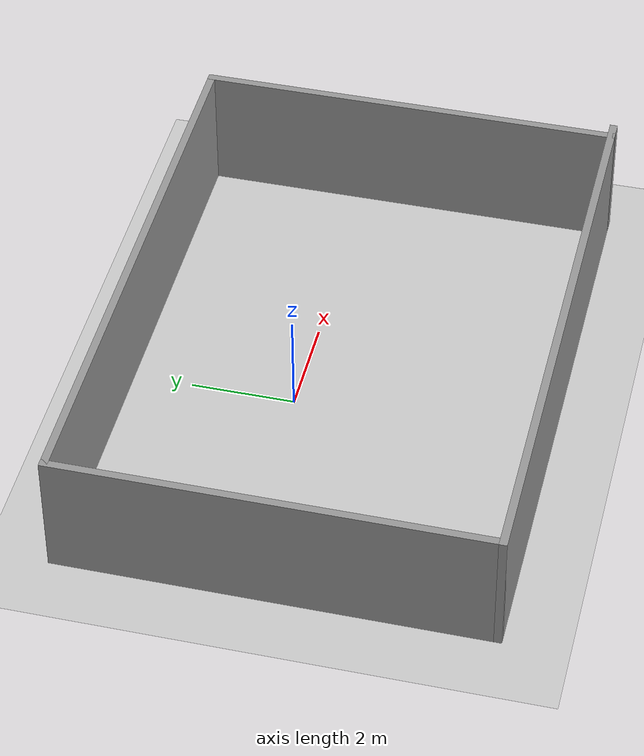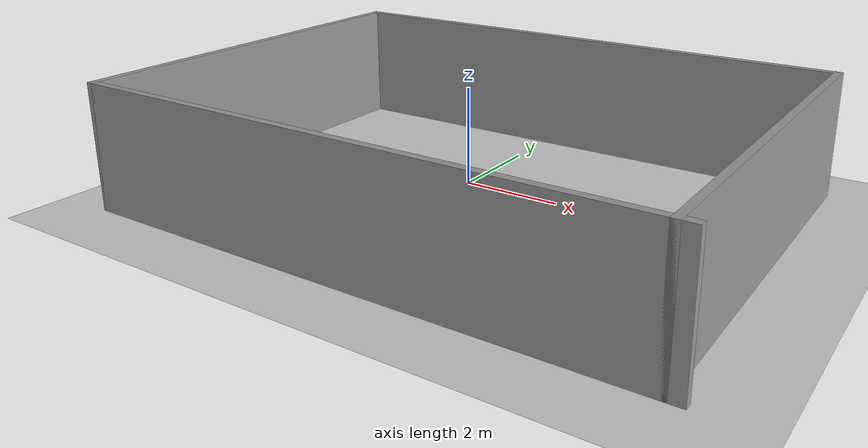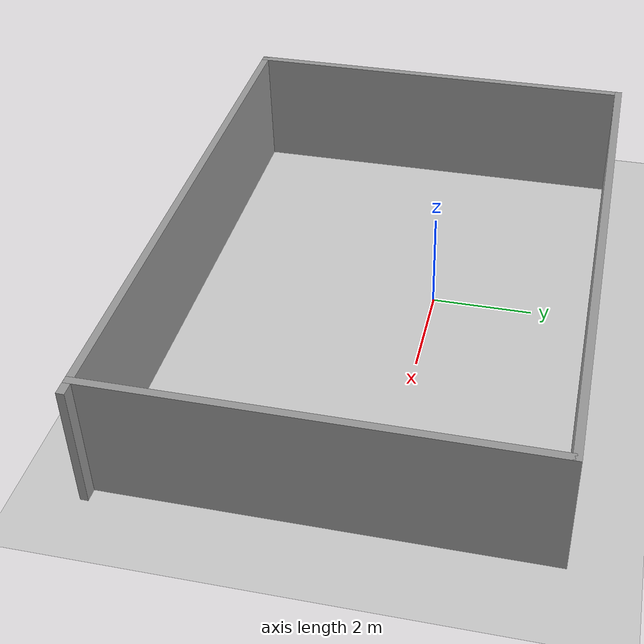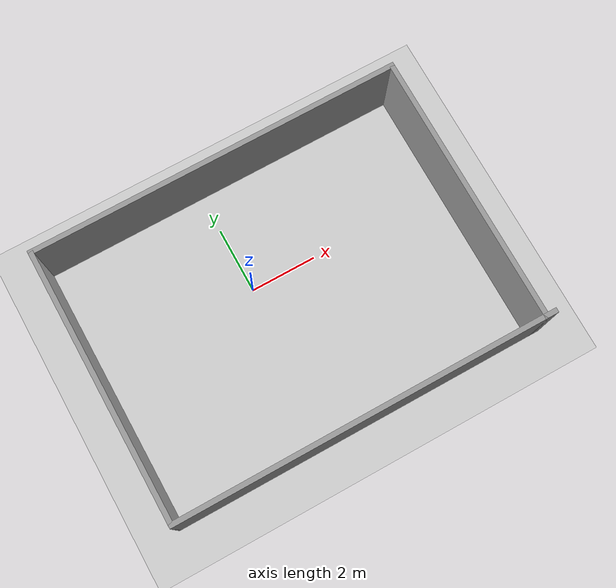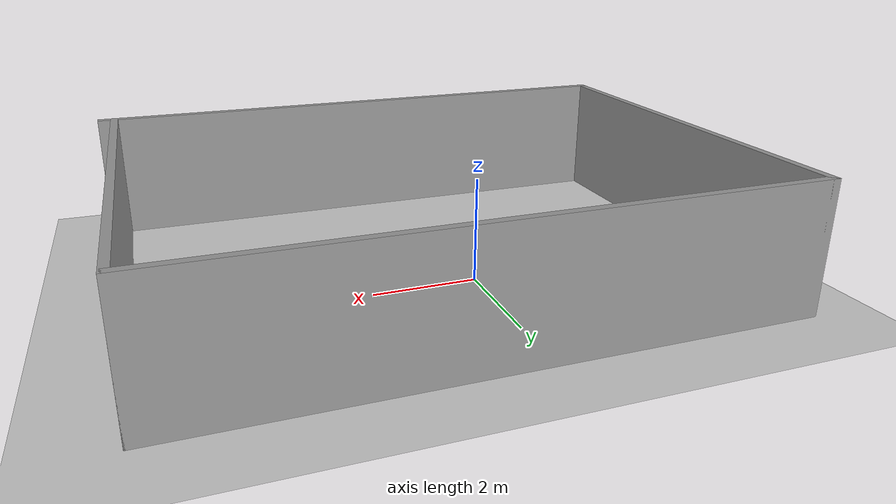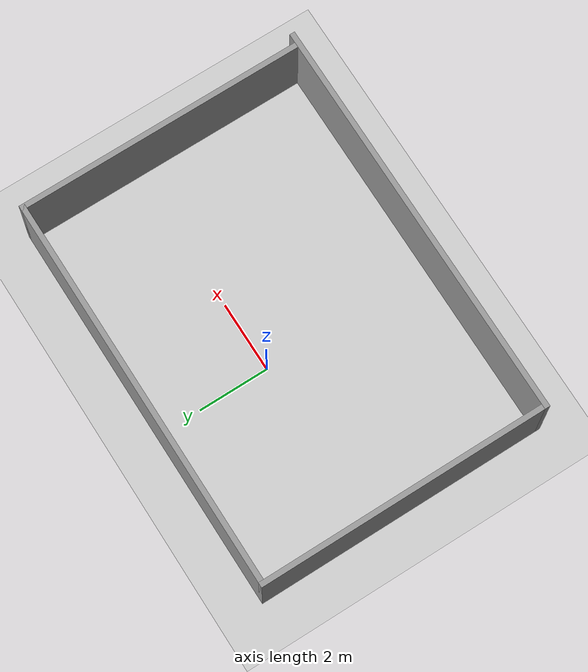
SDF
<?xml version="1.0" ?>

<sdf version="1.5">
	<world name="default">
		<!-- A global light source -->
		<include>
			<uri>model://sun</uri>
		</include>

		<!-- A ground plane -->
		<include>
			<uri>model://ground_plane</uri>
		</include>

		<include>
			<uri>model://world1</uri>
		</include>
	</world>
</sdf>

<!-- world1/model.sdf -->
<sdf version='1.6'>
  <model name='world1'>
    <pose frame=''>0.775361 -0.83674 0 0 -0 0</pose>
    <link name='Wall_10'>
      <collision name='Wall_10_Collision'>
        <geometry>
          <box>
            <size>11.5 0.15 2.5</size>
          </box>
        </geometry>
        <pose frame=''>0 0 1.25 0 -0 0</pose>
      </collision>
      <visual name='Wall_10_Visual'>
        <pose frame=''>0 0 1.25 0 -0 0</pose>
        <geometry>
          <box>
            <size>11.5 0.15 2.5</size>
          </box>
        </geometry>
        <material>
          <script>
            <uri>file://media/materials/scripts/gazebo.material</uri>
            <name>Gazebo/Grey</name>
          </script>
          <ambient>1 1 1 1</ambient>
        </material>
        <meta>
          <layer>0</layer>
        </meta>
      </visual>
      <pose frame=''>0 -4.05 0 0 -0 0</pose>
    </link>
    <link name='Wall_12'>
      <collision name='Wall_12_Collision'>
        <geometry>
          <box>
            <size>8.25 0.15 2.5</size>
          </box>
        </geometry>
        <pose frame=''>0 0 1.25 0 -0 0</pose>
      </collision>
      <visual name='Wall_12_Visual'>
        <pose frame=''>0 0 1.25 0 -0 0</pose>
        <geometry>
          <box>
            <size>8.25 0.15 2.5</size>
          </box>
        </geometry>
        <material>
          <script>
            <uri>file://media/materials/scripts/gazebo.material</uri>
            <name>Gazebo/Grey</name>
          </script>
          <ambient>1 1 1 1</ambient>
        </material>
        <meta>
          <layer>0</layer>
        </meta>
      </visual>
      <pose frame=''>-5.675 -0 0 0 -0 1.5708</pose>
    </link>
    <link name='Wall_13'>
      <collision name='Wall_13_Collision'>
        <geometry>
          <box>
            <size>11.25 0.15 2.5</size>
          </box>
        </geometry>
        <pose frame=''>0 0 1.25 0 -0 0</pose>
      </collision>
      <visual name='Wall_13_Visual'>
        <pose frame=''>0 0 1.25 0 -0 0</pose>
        <geometry>
          <box>
            <size>11.25 0.15 2.5</size>
          </box>
        </geometry>
        <material>
          <script>
            <uri>file://media/materials/scripts/gazebo.material</uri>
            <name>Gazebo/Grey</name>
          </script>
          <ambient>1 1 1 1</ambient>
        </material>
        <meta>
          <layer>0</layer>
        </meta>
      </visual>
      <pose frame=''>-0.125 4.05 0 0 -0 0</pose>
    </link>
    <link name='Wall_14'>
      <collision name='Wall_14_Collision'>
        <geometry>
          <box>
            <size>8.25 0.15 2.5</size>
          </box>
        </geometry>
        <pose frame=''>0 0 1.25 0 -0 0</pose>
      </collision>
      <visual name='Wall_14_Visual'>
        <pose frame=''>0 0 1.25 0 -0 0</pose>
        <geometry>
          <box>
            <size>8.25 0.15 2.5</size>
          </box>
        </geometry>
        <material>
          <script>
            <uri>file://media/materials/scripts/gazebo.material</uri>
            <name>Gazebo/Grey</name>
          </script>
          <ambient>1 1 1 1</ambient>
        </material>
        <meta>
          <layer>0</layer>
        </meta>
      </visual>
      <pose frame=''>5.425 -0 0 0 -0 -1.5708</pose>
    </link>
    <static>1</static>
  </model>
</sdf>
